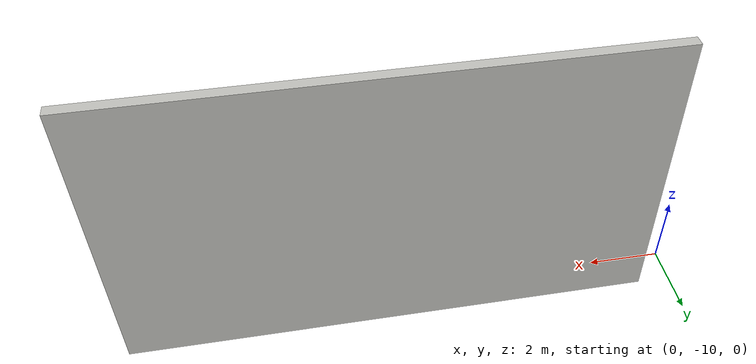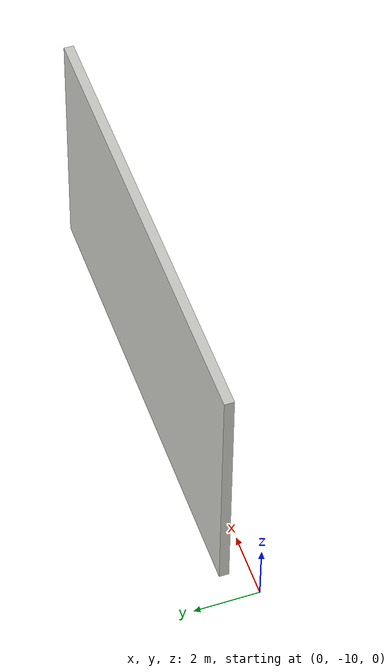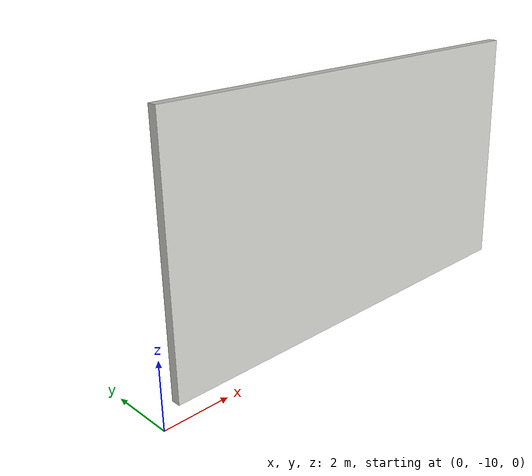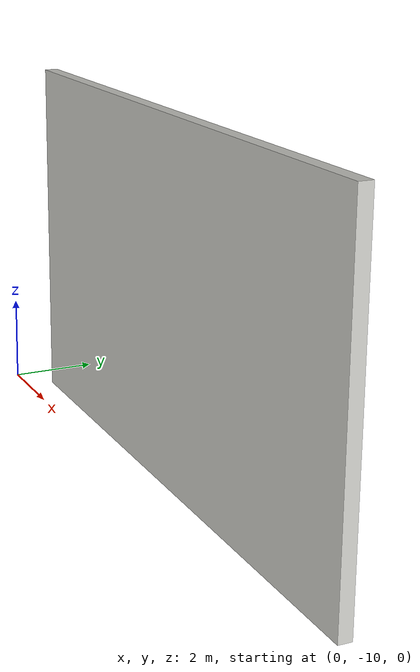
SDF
<?xml version='1.0'?>
<sdf version='1.7'>
  <model name='inespasa_wall'>
    <pose>7.516 -4.688 0 0 -0 0</pose>
    <link name='Wall_8'>
      <collision name='Wall_8_Collision'>
        <geometry>
          <box>
            <size>14.15 0.3 8</size>
          </box>
        </geometry>
        <pose>0 0 4 0 -0 0</pose>
      </collision>
      <visual name='Wall_8_Visual'>
        <pose>0 0 4 0 -0 0</pose>
        <geometry>
          <box>
            <size>14.15 0.3 8</size>
          </box>
        </geometry>
        <material>
          <script>
            <uri>file://media/materials/scripts/gazebo.material</uri>
            <name>Gazebo/CeilingTiled</name>
          </script>
          <ambient>1 1 1 1</ambient>
        </material>
        <meta>
          <layer>0</layer>
        </meta>
      </visual>
      <pose>0.441 -4.538 0 0 -0 3.14159</pose>
    </link>
    <static>1</static>
  </model>
</sdf>
